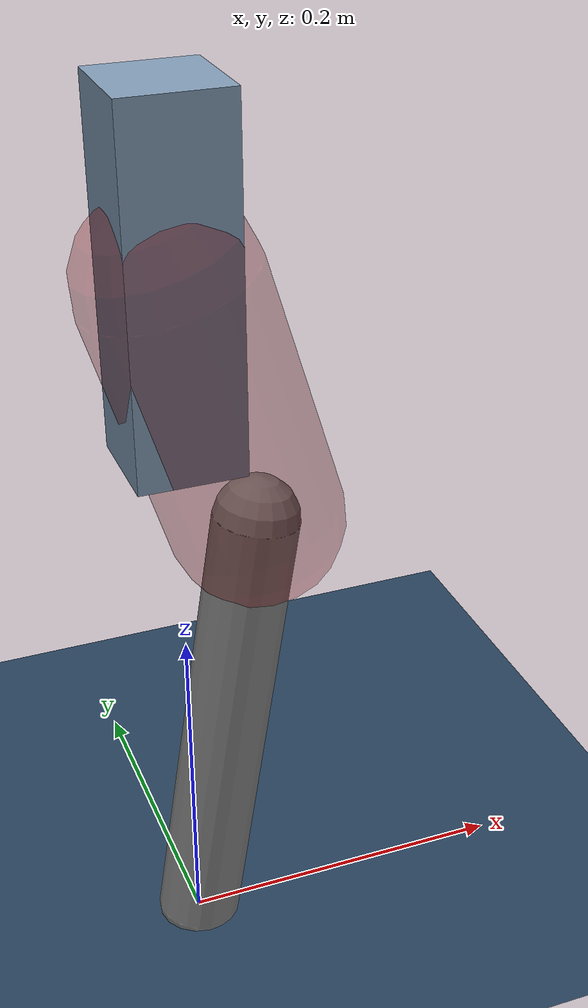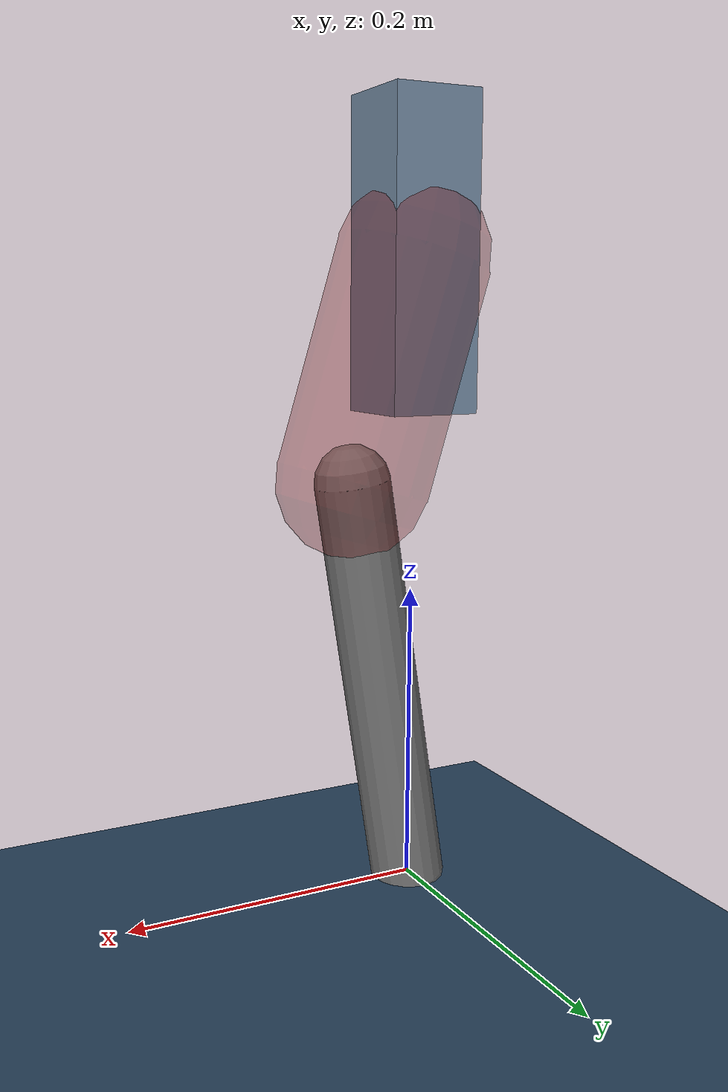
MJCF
<mujoco model="Hopper2D">
	<compiler inertiafromgeom="true" angle="radian" />
	<option timestep="0.001" integrator="implicit" cone="elliptic" solver="Newton" tolerance="1e-10" />

	<default>
		<geom contype="1" conaffinity="1" condim="3" friction="2 0.005 0.0001" solref="0.005 1" />
		<joint limited="true" damping="0.1" />
	</default>

	<asset>
		<texture name="skybox" type="skybox" builtin="gradient" rgb1=".4 .6 .8" rgb2="0 0 0" width="800" height="800" />
		<texture name="grid" type="2d" builtin="checker" rgb1=".1 .2 .3" rgb2=".2 .3 .4" width="300" height="300" mark="edge" markrgb=".2 .3 .4" />
		<material name="ground" texture="grid" texrepeat="1 1" texuniform="true" reflectance="0.1" />
		<material name="leg" rgba="0.5 0.6 0.7 1" />
	</asset>

	<worldbody>

		<geom name="floor" type="plane" size="5 5 0.25" material="ground" />

		<light directional="false" diffuse="0.8 0.8 0.8" specular="0.3 0.3 0.3" pos="0 0 2" dir="0 0 -1" />
		<light mode="targetbodycom" target="base" directional="false" diffuse="0.8 0.8 0.8" specular="0.3 0.3 0.3" pos="0 0 2" dir="0 0 -1" />

		<camera name="fixed" pos="0 -2 1" xyaxes="1 0 0 0 0 1" />
		<camera name="tracking" mode="trackcom" pos="0 -3 1" />

		<body name="root" pos="0 0 0.4183345688451959">
			<joint name="slide_x" type="slide" axis="1 0 0" range="-100 100" />
			<joint name="slide_z" type="slide" axis="0 0 1" range="0 10" />

			<body name="base" pos="0 0 0">
				<geom name="torso" type="box" size="0.03 0.03 0.1" mass="2.34" material="leg" />

				<body name="link1" pos="0 0 0" euler="0 1.2750259562220785 0">
					<joint type="hinge" axis="0 -1 0" pos="0 0 0" name="hinge1" limited="true" range="-3.14 3.14" stiffness="0" damping="0.1" />
					<geom name="thigh" type="capsule" fromto="0 0 0 0.15030533222475279 0 0" size="0.05" rgba="0.5 0 0 0.3" mass="0.6092327973394067" />

					<body name="link2" pos="0.15030533222475279 0 0" euler="0 0.45400511127694193 0">
						<joint type="hinge" axis="0 -1 0" pos="0 0 0" name="hinge2" limited="true" range="-3.14 3.14" stiffness="0" damping="0.1" />
						<geom name="shank" type="capsule" fromto="0 0 0 0.2780292366204431 0 0" size="0.025" mass="0.4655233892963545" />

					</body>
				</body>
			</body>
		</body>
	</worldbody>

	<actuator>
		<motor name="torque1" joint="hinge1" ctrlrange="-143.65711327071608 143.65711327071608" ctrllimited="true" gear="1" />
		<motor name="torque2" joint="hinge2" ctrlrange="-17.34916530396705 17.34916530396705" ctrllimited="true" gear="1" />
	</actuator>
</mujoco>
